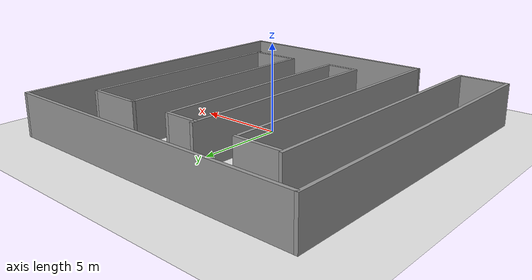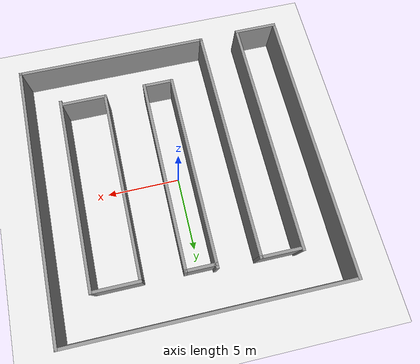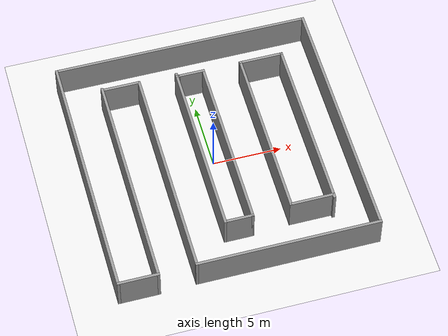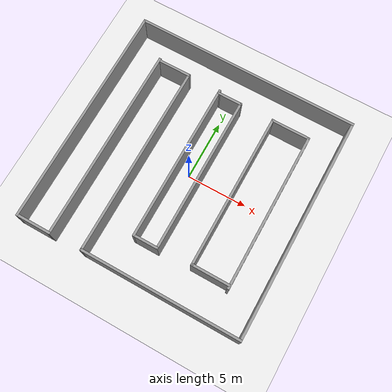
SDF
<?xml version='1.0'?>

<sdf version='1.4'>
  <world name='default'>

    <model name='ground_plane'>
      <static>1</static>
      <link name='link'>
        <collision name='collision'>
          <geometry>
            <plane>
              <normal>0 0 1</normal>
              <size>100 100</size>
            </plane>
          </geometry>
          <surface>
            <friction>
              <ode>
                <mu>100</mu>
                <mu2>50</mu2>
              </ode>
            </friction>
          </surface>
         <max_contacts>10</max_contacts>
        </collision>

        <visual name='visual'>
         <geometry>
            <plane>
              <normal>0 0 1</normal>
              <size>100 100</size>
            </plane>
         </geometry>
          <material>
            <script>
              <uri>file://media/materials/scripts/gazebo.material</uri>
              <name>Gazebo/White</name>
            </script>
          </material>
        </visual>
        <velocity_decay>
          <linear>0</linear>
          <angular>0</angular>
        </velocity_decay>
        <self_collide>0</self_collide>
        <kinematic>0</kinematic>
        <gravity>1</gravity>
      </link>
    </model>

    <model name='new_world'>
     <link name='Wall_100'>
      <collision name='Wall_100_Collision'>
        <geometry>
          <box>
            <size>13.0199 0.2 2.5</size>
          </box>
        </geometry>
        <pose>0 0 1.25 0 -0 0</pose>
      </collision>
      <visual name='Wall_100_Visual'>
        <pose>0 0 1.25 0 -0 0</pose>
        <geometry>
          <box>
            <size>13.0199 0.2 2.5</size>
          </box>
        </geometry>
        <material>
          <script>
            <uri>file://media/materials/scripts/gazebo.material</uri>
            <name>Gazebo/Grey</name>
          </script>
        </material>
      </visual>
      <velocity_decay>
        <linear>0</linear>
        <angular>0</angular>
      </velocity_decay>
      <pose>3.80858 0.058887 0 0 0 -1.5708</pose>
     </link>

     <link name='Wall_101'>
      <collision name='Wall_101_Collision'>
        <geometry>
          <box>
            <size>3.28802 0.2 2.5</size>
          </box>
        </geometry>
        <pose>0 0 1.25 0 -0 0</pose>
      </collision>
      <visual name='Wall_101_Visual'>
        <pose>0 0 1.25 0 -0 0</pose>
        <geometry>
          <box>
            <size>3.28802 0.2 2.5</size>
          </box>
        </geometry>
        <material>
          <script>
            <uri>file://media/materials/scripts/gazebo.material</uri>
            <name>Gazebo/Grey</name>
          </script>
        </material>
      </visual>
      <velocity_decay>
        <linear>0</linear>
        <angular>0</angular>
      </velocity_decay>
      <pose>5.35258 -6.35108 0 0 -0 0</pose>
     </link>

     <link name='Wall_67'>
      <collision name='Wall_67_Collision'>
        <geometry>
          <box>
            <size>18.7281 0.2 2.5</size>
          </box>
        </geometry>
        <pose>0 0 1.25 0 -0 0</pose>
      </collision>
      <visual name='Wall_67_Visual'>
        <pose>0 0 1.25 0 -0 0</pose>
        <geometry>
          <box>
            <size>18.7281 0.2 2.5</size>
          </box>
        </geometry>
        <material>
          <script>
            <uri>file://media/materials/scripts/gazebo.material</uri>
            <name>Gazebo/Grey</name>
          </script>
        </material>
      </visual>
      <velocity_decay>
        <linear>0</linear>
        <angular>0</angular>
      </velocity_decay>
      <pose>0.092528 9.19757 0 0 -0 0</pose>
     </link>

     <link name='Wall_68'>
      <collision name='Wall_68_Collision'>
        <geometry>
          <box>
            <size>18.7281 0.2 2.5</size>
          </box>
        </geometry>
        <pose>0 0 1.25 0 -0 0</pose>
      </collision>
      <visual name='Wall_68_Visual'>
        <pose>0 0 1.25 0 -0 0</pose>
        <geometry>
          <box>
            <size>18.7281 0.2 2.5</size>
          </box>
        </geometry>
        <material>
          <script>
            <uri>file://media/materials/scripts/gazebo.material</uri>
            <name>Gazebo/Grey</name>
          </script>
        </material>
      </visual>
      <velocity_decay>
        <linear>0</linear>
        <angular>0</angular>
      </velocity_decay>
      <pose>9.35657 -0.066477 0 0 0 -1.5708</pose>
     </link>

     <link name='Wall_69'>
      <collision name='Wall_69_Collision'>
        <geometry>
          <box>
            <size>13.3007 0.2 2.5</size>
          </box>
        </geometry>
        <pose>0 0 1.25 0 -0 0</pose>
      </collision>
      <visual name='Wall_69_Visual'>
        <pose>0 0 1.25 0 -0 0</pose>
        <geometry>
          <box>
            <size>13.3007 0.2 2.5</size>
          </box>
        </geometry>
        <material>
          <script>
            <uri>file://media/materials/scripts/gazebo.material</uri>
            <name>Gazebo/Grey</name>
          </script>
        </material>
      </visual>
      <velocity_decay>
        <linear>0</linear>
        <angular>0</angular>
      </velocity_decay>
      <pose>2.80624 -9.33052 0 0 -0 3.14159</pose>
     </link>

     <link name='Wall_70'>
      <collision name='Wall_70_Collision'>
        <geometry>
          <box>
            <size>16.2015 0.2 2.5</size>
          </box>
        </geometry>
        <pose>0 0 1.25 0 -0 0</pose>
      </collision>
      <visual name='Wall_70_Visual'>
        <pose>0 0 1.25 0 -0 0</pose>
        <geometry>
          <box>
            <size>16.2015 0.2 2.5</size>
          </box>
        </geometry>
        <material>
          <script>
            <uri>file://media/materials/scripts/gazebo.material</uri>
            <name>Gazebo/Grey</name>
          </script>
        </material>
      </visual>
      <velocity_decay>
        <linear>0</linear>
        <angular>0</angular>
      </velocity_decay>
      <pose>-3.7441 -1.32976 0 0 -0 1.5708</pose>
     </link>

     <link name='Wall_71'>
      <collision name='Wall_71_Collision'>
        <geometry>
          <box>
            <size>2.72656 0.2 2.5</size>
          </box>
        </geometry>
        <pose>0 0 1.25 0 -0 0</pose>
      </collision>
      <visual name='Wall_71_Visual'>
        <pose>0 0 1.25 0 -0 0</pose>
        <geometry>
          <box>
            <size>2.72656 0.2 2.5</size>
          </box>
        </geometry>
        <material>
          <script>
            <uri>file://media/materials/scripts/gazebo.material</uri>
            <name>Gazebo/Grey</name>
          </script>
        </material>
      </visual>
      <velocity_decay>
        <linear>0</linear>
        <angular>0</angular>
      </velocity_decay>
      <pose>-5.00737 6.67101 0 0 -0 3.14159</pose>
     </link>

     <link name='Wall_73'>
      <collision name='Wall_73_Collision'>
        <geometry>
          <box>
            <size>18.8217 0.2 2.5</size>
          </box>
        </geometry>
        <pose>0 0 1.25 0 -0 0</pose>
      </collision>
      <visual name='Wall_73_Visual'>
        <pose>0 0 1.25 0 -0 0</pose>
        <geometry>
          <box>
            <size>18.8217 0.2 2.5</size>
          </box>
        </geometry>
        <material>
          <script>
            <uri>file://media/materials/scripts/gazebo.material</uri>
            <name>Gazebo/Grey</name>
          </script>
        </material>
      </visual>
      <velocity_decay>
        <linear>0</linear>
        <angular>0</angular>
      </velocity_decay>
      <pose>-9.26509 -0.113265 0 0 0 -1.5708</pose>
     </link>

     <link name='Wall_74'>
      <collision name='Wall_74_Collision'>
        <geometry>
          <box>
            <size>3.00729 0.2 2.5</size>
          </box>
        </geometry>
        <pose>0 0 1.25 0 -0 0</pose>
      </collision>
      <visual name='Wall_74_Visual'>
        <pose>0 0 1.25 0 -0 0</pose>
        <geometry>
          <box>
            <size>3.00729 0.2 2.5</size>
          </box>
        </geometry>
        <material>
          <script>
            <uri>file://media/materials/scripts/gazebo.material</uri>
            <name>Gazebo/Grey</name>
          </script>
        </material>
      </visual>
      <velocity_decay>
        <linear>0</linear>
        <angular>0</angular>
      </velocity_decay>
      <pose>-7.86145 -9.4241 0 0 -0 0</pose>
     </link>

     <link name='Wall_75'>
      <collision name='Wall_75_Collision'>
        <geometry>
          <box>
            <size>16.3887 0.2 2.5</size>
          </box>
        </geometry>
        <pose>0 0 1.25 0 -0 0</pose>
      </collision>
      <visual name='Wall_75_Visual'>
        <pose>0 0 1.25 0 -0 0</pose>
        <geometry>
          <box>
            <size>16.3887 0.2 2.5</size>
          </box>
        </geometry>
        <material>
          <script>
            <uri>file://media/materials/scripts/gazebo.material</uri>
            <name>Gazebo/Grey</name>
          </script>
        </material>
      </visual>
      <velocity_decay>
        <linear>0</linear>
        <angular>0</angular>
      </velocity_decay>
      <pose>-6.45781 -1.32976 0 0 -0 1.5708</pose>
     </link>

     <link name='Wall_88'>
      <collision name='Wall_88_Collision'>
        <geometry>
          <box>
            <size>13.3942 0.2 2.5</size>
          </box>
        </geometry>
        <pose>0 0 1.25 0 -0 0</pose>
      </collision>
      <visual name='Wall_88_Visual'>
        <pose>0 0 1.25 0 -0 0</pose>
        <geometry>
          <box>
            <size>13.3942 0.2 2.5</size>
          </box>
        </geometry>
        <material>
          <script>
            <uri>file://media/materials/scripts/gazebo.material</uri>
            <name>Gazebo/Grey</name>
          </script>
        </material>
      </visual>
      <velocity_decay>
        <linear>0</linear>
        <angular>0</angular>
      </velocity_decay>
      <pose>-0.96381 0.058887 0 0 -0 1.5708</pose>
     </link>

     <link name='Wall_90'>
      <collision name='Wall_90_Collision'>
        <geometry>
          <box>
            <size>1.97795 0.2 2.5</size>
          </box>
        </geometry>
        <pose>0 0 1.25 0 -0 0</pose>
      </collision>
      <visual name='Wall_90_Visual'>
        <pose>0 0 1.25 0 -0 0</pose>
        <geometry>
          <box>
            <size>1.97795 0.2 2.5</size>
          </box>
        </geometry>
        <material>
          <script>
            <uri>file://media/materials/scripts/gazebo.material</uri>
            <name>Gazebo/Grey</name>
          </script>
        </material>
      </visual>
      <velocity_decay>
        <linear>0</linear>
        <angular>0</angular>
      </velocity_decay>
      <pose>0.112316 -6.53824 0 0 -0 0</pose>
     </link>

     <link name='Wall_91'>
      <collision name='Wall_91_Collision'>
        <geometry>
          <box>
            <size>13.2071 0.2 2.5</size>
          </box>
        </geometry>
        <pose>0 0 1.25 0 -0 0</pose>
      </collision>
      <visual name='Wall_91_Visual'>
        <pose>0 0 1.25 0 -0 0</pose>
        <geometry>
          <box>
            <size>13.2071 0.2 2.5</size>
          </box>
        </geometry>
        <material>
          <script>
            <uri>file://media/materials/scripts/gazebo.material</uri>
            <name>Gazebo/Grey</name>
          </script>
        </material>
      </visual>
      <velocity_decay>
        <linear>0</linear>
        <angular>0</angular>
      </velocity_decay>
      <pose>1.00129 -0.034689 0 0 -0 1.5708</pose>
     </link>

     <link name='Wall_92'>
      <collision name='Wall_92_Collision'>
        <geometry>
          <box>
            <size>2.1651 0.2 2.5</size>
          </box>
        </geometry>
        <pose>0 0 1.25 0 -0 0</pose>
      </collision>
      <visual name='Wall_92_Visual'>
        <pose>0 0 1.25 0 -0 0</pose>
        <geometry>
          <box>
            <size>2.1651 0.2 2.5</size>
          </box>
        </geometry>
        <material>
          <script>
            <uri>file://media/materials/scripts/gazebo.material</uri>
            <name>Gazebo/Grey</name>
          </script>
        </material>
      </visual>
      <velocity_decay>
        <linear>0</linear>
        <angular>0</angular>
      </velocity_decay>
      <pose>0.01874 6.46886 0 0 -0 3.14159</pose>
     </link>

     <link name='Wall_93'>
      <collision name='Wall_93_Collision'>
        <geometry>
          <box>
            <size>0.293576 0.2 2.5</size>
          </box>
        </geometry>
        <pose>0 0 1.25 0 -0 0</pose>
      </collision>
      <visual name='Wall_93_Visual'>
        <pose>0 0 1.25 0 -0 0</pose>
        <geometry>
          <box>
            <size>0.293576 0.2 2.5</size>
          </box>
        </geometry>
        <material>
          <script>
            <uri>file://media/materials/scripts/gazebo.material</uri>
            <name>Gazebo/Grey</name>
          </script>
        </material>
      </visual>
      <velocity_decay>
        <linear>0</linear>
        <angular>0</angular>
      </velocity_decay>
      <pose>-0.917022 6.46886 0 0 -0 0</pose>
     </link>

     <link name='Wall_98'>
      <collision name='Wall_98_Collision'>
        <geometry>
          <box>
            <size>13.2071 0.2 2.5</size>
          </box>
        </geometry>
        <pose>0 0 1.25 0 -0 0</pose>
      </collision>
      <visual name='Wall_98_Visual'>
        <pose>0 0 1.25 0 -0 0</pose>
        <geometry>
          <box>
            <size>13.2071 0.2 2.5</size>
          </box>
        </geometry>
        <material>
          <script>
            <uri>file://media/materials/scripts/gazebo.material</uri>
            <name>Gazebo/Grey</name>
          </script>
        </material>
      </visual>
      <velocity_decay>
        <linear>0</linear>
        <angular>0</angular>
      </velocity_decay>
      <pose>6.89659 -0.034689 0 0 -0 1.5708</pose>
     </link>

     <link name='Wall_99'>
      <collision name='Wall_99_Collision'>
        <geometry>
          <box>
            <size>3.28802 0.2 2.5</size>
          </box>
        </geometry>
        <pose>0 0 1.25 0 -0 0</pose>
      </collision>
      <visual name='Wall_99_Visual'>
        <pose>0 0 1.25 0 -0 0</pose>
        <geometry>
          <box>
            <size>3.28802 0.2 2.5</size>
          </box>
        </geometry>
        <material>
          <script>
            <uri>file://media/materials/scripts/gazebo.material</uri>
            <name>Gazebo/Grey</name>
          </script>
        </material>
      </visual>
      <velocity_decay>
        <linear>0</linear>
        <angular>0</angular>
      </velocity_decay>
      <pose>5.35258 6.46886 0 0 -0 3.14159</pose>
     </link>
    <static>1</static>
  </model>

   <physics type='ode'>
      <max_step_size>0.001</max_step_size>
      <real_time_factor>1</real_time_factor>
      <real_time_update_rate>1000</real_time_update_rate>
      <gravity>0 0 -9.8</gravity>
    </physics>
  </world>
</sdf>
